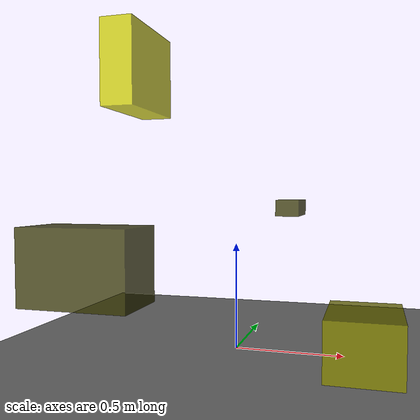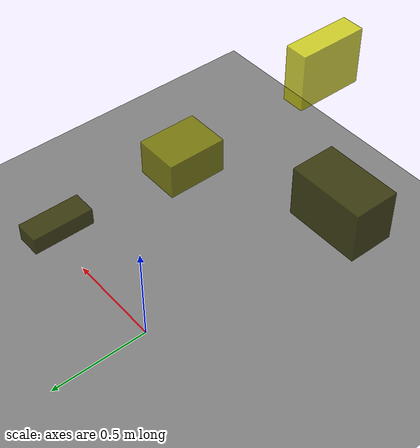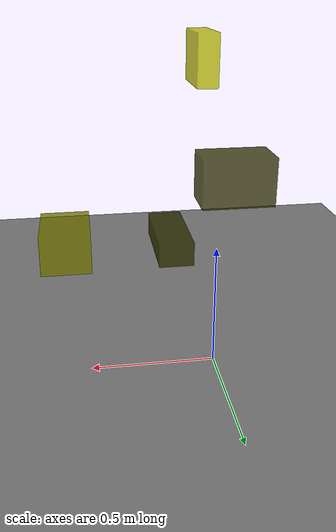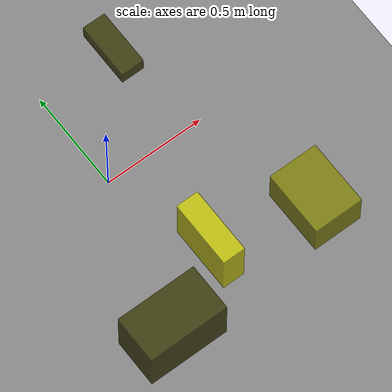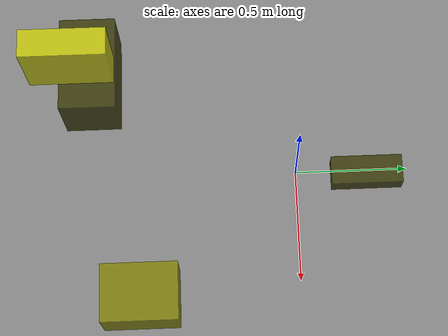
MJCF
<?xml version="1.0"?>
<mujoco model="obstacle_scene">
  <compiler angle="radian" coordinate="local"/>
  <option timestep="0.001" gravity="0 0 -9.81"/>

  <asset>
    <material name="obstacle_mat" rgba="0.8 0.8 0.0 0.8"/>
    <material name="ground_mat" rgba="0.5 0.5 0.5 1"/>
  </asset>

  <worldbody>
    <!-- Ground plane -->
    <geom name="ground" type="plane" size="3 3 0.1" material="ground_mat"/>

    <!-- Obstacles -->
    <body name="obstacle_0" pos="-0.300606 -0.863868 0.496789">
      <geom name="obs_0" type="box" size="0.194764 0.114468 0.132479" rgba="0.2 0.2 0.0 0.8"/>
    </body>
    <body name="obstacle_1" pos="0.596955 -0.683863 0.259223">
      <geom name="obs_1" type="box" size="0.121298 0.160321 0.098176" rgba="0.5 0.5 0.0 0.8"/>
    </body>
    <body name="obstacle_2" pos="-0.108919 -0.866949 1.124944">
      <geom name="obs_2" type="box" size="0.051491 0.154677 0.129094" rgba="0.8 0.8 0.0 0.8"/>
    </body>
    <body name="obstacle_3" pos="0.222033 0.239768 0.667525">
      <geom name="obs_3" type="box" size="0.055500 0.137452 0.039064" rgba="0.2 0.2 0.0 0.8"/>
    </body>
  </worldbody>
</mujoco>
